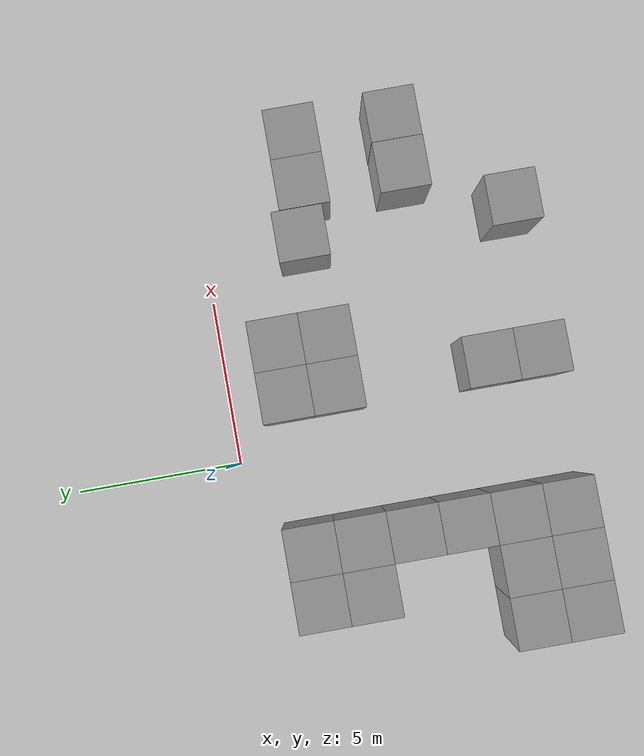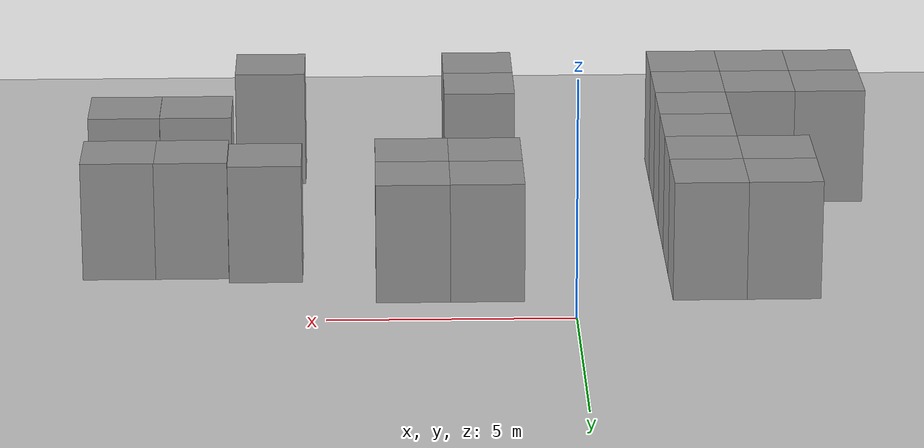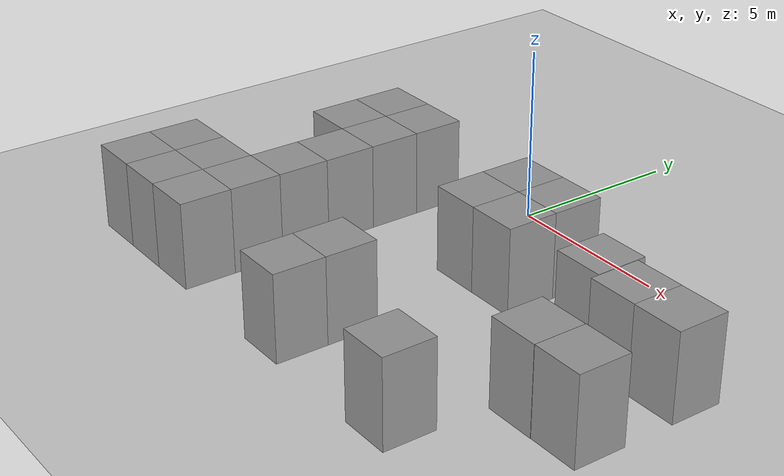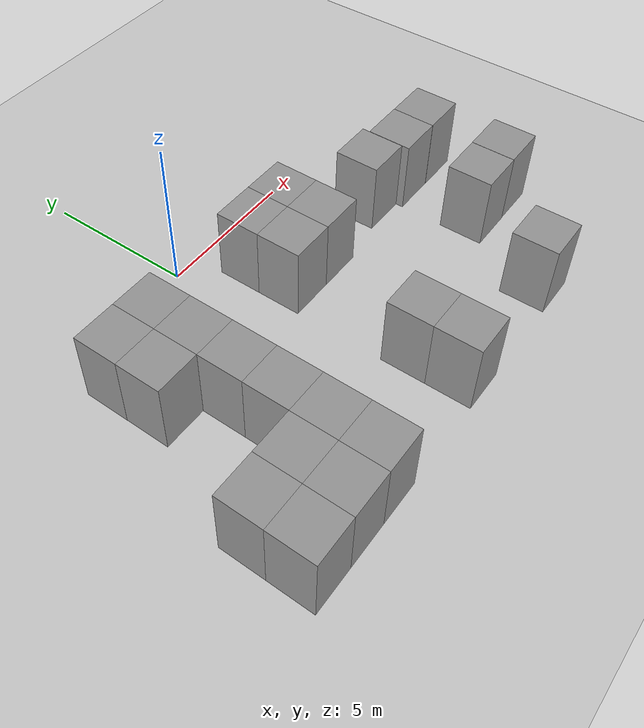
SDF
<sdf version="1.6">
 <world name="default">
  <model name="ground_plane">
   <static>1</static>
   <link name="link">
    <collision name="collision">
     <geometry><plane><normal>0 0 1</normal><size>100 100</size></plane></geometry>
     <surface><friction><ode><mu>100</mu><mu2>50</mu2></ode></friction></surface>
    </collision>
    <visual name="visual">
     <cast_shadows>0</cast_shadows>
     <geometry><plane><normal>0 0 1</normal><size>100 100</size></plane></geometry>
     <material>
      <script><uri>file://media/materials/scripts/gazebo.material</uri><name>Gazebo/Grey</name></script>
     </material>
    </visual>
   </link>
  </model>
  <model name="wall_1.5_1.5">
   <link name="Wall_2">
    <inertial>
     <mass>10</mass>
     <inertia><ixx>1</ixx><ixy>0</ixy><ixz>0</ixz><iyy>1</iyy><iyz>0</iyz><izz>1</izz></inertia>
    </inertial>
    <visual name="Wall_2_Visual">
     <pose>0 0 1.25 0 -0 0</pose>
     <geometry><box><size>1.5 1.5 2.5</size></box></geometry>
     <material>
      <script><uri>file://media/materials/scripts/gazebo.material</uri><name>Gazebo/Grey</name></script>
      <ambient>1 1 1 1</ambient>
      <diffuse>0.7 0.7 0.7 1</diffuse>
      <specular>0.01 0.01 0.01 1</specular>
      <emissive>0 0 0 1</emissive>
      <shader type="vertex"><normal_map>__default__</normal_map></shader>
     </material>
    </visual>
    <collision name="Wall_2_Collision">
     <pose>0 0 1.25 0 -0 0</pose>
     <geometry><box><size>1.5 1.5 2.5</size></box></geometry>
     <surface>
      <friction>
       <ode><mu>1</mu><mu2>1</mu2><fdir1>0 0 0</fdir1><slip1>0</slip1><slip2>0</slip2></ode>
       <torsional>
        <coefficient>1</coefficient>
        <patch_radius>0</patch_radius>
        <surface_radius>0</surface_radius>
        <use_patch_radius>1</use_patch_radius>
        <ode><slip>0</slip></ode>
       </torsional>
      </friction>
      <bounce><restitution_coefficient>0</restitution_coefficient><threshold>1e+06</threshold></bounce>
      <contact>
       <collide_without_contact>0</collide_without_contact>
       <collide_without_contact_bitmask>1</collide_without_contact_bitmask>
       <collide_bitmask>1</collide_bitmask>
       <ode>
        <soft_cfm>0</soft_cfm>
        <soft_erp>0.2</soft_erp>
        <kp>1e+13</kp>
        <kd>1</kd>
        <max_vel>0.01</max_vel>
        <min_depth>0</min_depth>
       </ode>
       <bullet>
        <split_impulse>1</split_impulse>
        <split_impulse_penetration_threshold>-0.01</split_impulse_penetration_threshold>
        <soft_cfm>0</soft_cfm>
        <soft_erp>0.2</soft_erp>
        <kp>1e+13</kp>
        <kd>1</kd>
       </bullet>
      </contact>
     </surface>
    </collision>
   </link>
   <static>1</static>
   <pose>6.25 -9.25 0 0 -0 0</pose>
  </model>
  <model name="wall_1.5_1.5_2">
   <link name="Wall_2">
    <inertial>
     <mass>10</mass>
     <inertia><ixx>1</ixx><ixy>0</ixy><ixz>0</ixz><iyy>1</iyy><iyz>0</iyz><izz>1</izz></inertia>
    </inertial>
    <visual name="Wall_2_Visual">
     <pose>0 0 1.25 0 -0 0</pose>
     <geometry><box><size>1.5 1.5 2.5</size></box></geometry>
     <material>
      <script><uri>file://media/materials/scripts/gazebo.material</uri><name>Gazebo/Grey</name></script>
      <ambient>1 1 1 1</ambient>
      <diffuse>0.7 0.7 0.7 1</diffuse>
      <specular>0.01 0.01 0.01 1</specular>
      <emissive>0 0 0 1</emissive>
      <shader type="vertex"><normal_map>__default__</normal_map></shader>
     </material>
    </visual>
    <collision name="Wall_2_Collision">
     <pose>0 0 1.25 0 -0 0</pose>
     <geometry><box><size>1.5 1.5 2.5</size></box></geometry>
     <surface>
      <friction>
       <ode><mu>1</mu><mu2>1</mu2><fdir1>0 0 0</fdir1><slip1>0</slip1><slip2>0</slip2></ode>
       <torsional>
        <coefficient>1</coefficient>
        <patch_radius>0</patch_radius>
        <surface_radius>0</surface_radius>
        <use_patch_radius>1</use_patch_radius>
        <ode><slip>0</slip></ode>
       </torsional>
      </friction>
      <bounce><restitution_coefficient>0</restitution_coefficient><threshold>1e+06</threshold></bounce>
      <contact>
       <collide_without_contact>0</collide_without_contact>
       <collide_without_contact_bitmask>1</collide_without_contact_bitmask>
       <collide_bitmask>1</collide_bitmask>
       <ode>
        <soft_cfm>0</soft_cfm>
        <soft_erp>0.2</soft_erp>
        <kp>1e+13</kp>
        <kd>1</kd>
        <max_vel>0.01</max_vel>
        <min_depth>0</min_depth>
       </ode>
       <bullet>
        <split_impulse>1</split_impulse>
        <split_impulse_penetration_threshold>-0.01</split_impulse_penetration_threshold>
        <soft_cfm>0</soft_cfm>
        <soft_erp>0.2</soft_erp>
        <kp>1e+13</kp>
        <kd>1</kd>
       </bullet>
      </contact>
     </surface>
    </collision>
   </link>
   <static>1</static>
   <pose>6.25 -3 0 0 -0 0</pose>
  </model>
  <model name="wall_1.5_1.5_3">
   <link name="Wall_2">
    <inertial>
     <mass>10</mass>
     <inertia><ixx>1</ixx><ixy>0</ixy><ixz>0</ixz><iyy>1</iyy><iyz>0</iyz><izz>1</izz></inertia>
    </inertial>
    <visual name="Wall_2_Visual">
     <pose>0 0 1.25 0 -0 0</pose>
     <geometry><box><size>1.5 1.5 2.5</size></box></geometry>
     <material>
      <script><uri>file://media/materials/scripts/gazebo.material</uri><name>Gazebo/Grey</name></script>
      <ambient>1 1 1 1</ambient>
      <diffuse>0.7 0.7 0.7 1</diffuse>
      <specular>0.01 0.01 0.01 1</specular>
      <emissive>0 0 0 1</emissive>
      <shader type="vertex"><normal_map>__default__</normal_map></shader>
     </material>
    </visual>
    <collision name="Wall_2_Collision">
     <pose>0 0 1.25 0 -0 0</pose>
     <geometry><box><size>1.5 1.5 2.5</size></box></geometry>
     <surface>
      <friction>
       <ode><mu>1</mu><mu2>1</mu2><fdir1>0 0 0</fdir1><slip1>0</slip1><slip2>0</slip2></ode>
       <torsional>
        <coefficient>1</coefficient>
        <patch_radius>0</patch_radius>
        <surface_radius>0</surface_radius>
        <use_patch_radius>1</use_patch_radius>
        <ode><slip>0</slip></ode>
       </torsional>
      </friction>
      <bounce><restitution_coefficient>0</restitution_coefficient><threshold>1e+06</threshold></bounce>
      <contact>
       <collide_without_contact>0</collide_without_contact>
       <collide_without_contact_bitmask>1</collide_without_contact_bitmask>
       <collide_bitmask>1</collide_bitmask>
       <ode>
        <soft_cfm>0</soft_cfm>
        <soft_erp>0.2</soft_erp>
        <kp>1e+13</kp>
        <kd>1</kd>
        <max_vel>0.01</max_vel>
        <min_depth>0</min_depth>
       </ode>
       <bullet>
        <split_impulse>1</split_impulse>
        <split_impulse_penetration_threshold>-0.01</split_impulse_penetration_threshold>
        <soft_cfm>0</soft_cfm>
        <soft_erp>0.2</soft_erp>
        <kp>1e+13</kp>
        <kd>1</kd>
       </bullet>
      </contact>
     </surface>
    </collision>
   </link>
   <static>1</static>
   <pose>7.75334 -6.23301 0 0 -0 0</pose>
  </model>
  <model name="wall_1.5_1.5_8">
   <link name="Wall_2">
    <inertial>
     <mass>10</mass>
     <inertia><ixx>1</ixx><ixy>0</ixy><ixz>0</ixz><iyy>1</iyy><iyz>0</iyz><izz>1</izz></inertia>
    </inertial>
    <visual name="Wall_2_Visual">
     <pose>0 0 1.25 0 -0 0</pose>
     <geometry><box><size>1.5 1.5 2.5</size></box></geometry>
     <material>
      <script><uri>file://media/materials/scripts/gazebo.material</uri><name>Gazebo/Grey</name></script>
      <ambient>1 1 1 1</ambient>
      <diffuse>0.7 0.7 0.7 1</diffuse>
      <specular>0.01 0.01 0.01 1</specular>
      <emissive>0 0 0 1</emissive>
      <shader type="vertex"><normal_map>__default__</normal_map></shader>
     </material>
    </visual>
    <collision name="Wall_2_Collision">
     <pose>0 0 1.25 0 -0 0</pose>
     <geometry><box><size>1.5 1.5 2.5</size></box></geometry>
     <surface>
      <friction>
       <ode><mu>1</mu><mu2>1</mu2><fdir1>0 0 0</fdir1><slip1>0</slip1><slip2>0</slip2></ode>
       <torsional>
        <coefficient>1</coefficient>
        <patch_radius>0</patch_radius>
        <surface_radius>0</surface_radius>
        <use_patch_radius>1</use_patch_radius>
        <ode><slip>0</slip></ode>
       </torsional>
      </friction>
      <bounce><restitution_coefficient>0</restitution_coefficient><threshold>1e+06</threshold></bounce>
      <contact>
       <collide_without_contact>0</collide_without_contact>
       <collide_without_contact_bitmask>1</collide_without_contact_bitmask>
       <collide_bitmask>1</collide_bitmask>
       <ode>
        <soft_cfm>0</soft_cfm>
        <soft_erp>0.2</soft_erp>
        <kp>1e+13</kp>
        <kd>1</kd>
        <max_vel>0.01</max_vel>
        <min_depth>0</min_depth>
       </ode>
       <bullet>
        <split_impulse>1</split_impulse>
        <split_impulse_penetration_threshold>-0.01</split_impulse_penetration_threshold>
        <soft_cfm>0</soft_cfm>
        <soft_erp>0.2</soft_erp>
        <kp>1e+13</kp>
        <kd>1</kd>
       </bullet>
      </contact>
     </surface>
    </collision>
   </link>
   <static>1</static>
   <pose>9.25677 -6.22393 0 0 -0 0</pose>
  </model>
  <model name="wall_1.5_1.5_9">
   <link name="Wall_2">
    <inertial>
     <mass>10</mass>
     <inertia><ixx>1</ixx><ixy>0</ixy><ixz>0</ixz><iyy>1</iyy><iyz>0</iyz><izz>1</izz></inertia>
    </inertial>
    <visual name="Wall_2_Visual">
     <pose>0 0 1.25 0 -0 0</pose>
     <geometry><box><size>1.5 1.5 2.5</size></box></geometry>
     <material>
      <script><uri>file://media/materials/scripts/gazebo.material</uri><name>Gazebo/Grey</name></script>
      <ambient>1 1 1 1</ambient>
      <diffuse>0.7 0.7 0.7 1</diffuse>
      <specular>0.01 0.01 0.01 1</specular>
      <emissive>0 0 0 1</emissive>
      <shader type="vertex"><normal_map>__default__</normal_map></shader>
     </material>
    </visual>
    <collision name="Wall_2_Collision">
     <pose>0 0 1.25 0 -0 0</pose>
     <geometry><box><size>1.5 1.5 2.5</size></box></geometry>
     <surface>
      <friction>
       <ode><mu>1</mu><mu2>1</mu2><fdir1>0 0 0</fdir1><slip1>0</slip1><slip2>0</slip2></ode>
       <torsional>
        <coefficient>1</coefficient>
        <patch_radius>0</patch_radius>
        <surface_radius>0</surface_radius>
        <use_patch_radius>1</use_patch_radius>
        <ode><slip>0</slip></ode>
       </torsional>
      </friction>
      <bounce><restitution_coefficient>0</restitution_coefficient><threshold>1e+06</threshold></bounce>
      <contact>
       <collide_without_contact>0</collide_without_contact>
       <collide_without_contact_bitmask>1</collide_without_contact_bitmask>
       <collide_bitmask>1</collide_bitmask>
       <ode>
        <soft_cfm>0</soft_cfm>
        <soft_erp>0.2</soft_erp>
        <kp>1e+13</kp>
        <kd>1</kd>
        <max_vel>0.01</max_vel>
        <min_depth>0</min_depth>
       </ode>
       <bullet>
        <split_impulse>1</split_impulse>
        <split_impulse_penetration_threshold>-0.01</split_impulse_penetration_threshold>
        <soft_cfm>0</soft_cfm>
        <soft_erp>0.2</soft_erp>
        <kp>1e+13</kp>
        <kd>1</kd>
       </bullet>
      </contact>
     </surface>
    </collision>
   </link>
   <static>1</static>
   <pose>9.24884 -3.25545 0 0 -0 0</pose>
  </model>
  <model name="wall_1.5_1.5_10">
   <link name="Wall_2">
    <inertial>
     <mass>10</mass>
     <inertia><ixx>1</ixx><ixy>0</ixy><ixz>0</ixz><iyy>1</iyy><iyz>0</iyz><izz>1</izz></inertia>
    </inertial>
    <visual name="Wall_2_Visual">
     <pose>0 0 1.25 0 -0 0</pose>
     <geometry><box><size>1.5 1.5 2.5</size></box></geometry>
     <material>
      <script><uri>file://media/materials/scripts/gazebo.material</uri><name>Gazebo/Grey</name></script>
      <ambient>1 1 1 1</ambient>
      <diffuse>0.7 0.7 0.7 1</diffuse>
      <specular>0.01 0.01 0.01 1</specular>
      <emissive>0 0 0 1</emissive>
      <shader type="vertex"><normal_map>__default__</normal_map></shader>
     </material>
    </visual>
    <collision name="Wall_2_Collision">
     <pose>0 0 1.25 0 -0 0</pose>
     <geometry><box><size>1.5 1.5 2.5</size></box></geometry>
     <surface>
      <friction>
       <ode><mu>1</mu><mu2>1</mu2><fdir1>0 0 0</fdir1><slip1>0</slip1><slip2>0</slip2></ode>
       <torsional>
        <coefficient>1</coefficient>
        <patch_radius>0</patch_radius>
        <surface_radius>0</surface_radius>
        <use_patch_radius>1</use_patch_radius>
        <ode><slip>0</slip></ode>
       </torsional>
      </friction>
      <bounce><restitution_coefficient>0</restitution_coefficient><threshold>1e+06</threshold></bounce>
      <contact>
       <collide_without_contact>0</collide_without_contact>
       <collide_without_contact_bitmask>1</collide_without_contact_bitmask>
       <collide_bitmask>1</collide_bitmask>
       <ode>
        <soft_cfm>0</soft_cfm>
        <soft_erp>0.2</soft_erp>
        <kp>1e+13</kp>
        <kd>1</kd>
        <max_vel>0.01</max_vel>
        <min_depth>0</min_depth>
       </ode>
       <bullet>
        <split_impulse>1</split_impulse>
        <split_impulse_penetration_threshold>-0.01</split_impulse_penetration_threshold>
        <soft_cfm>0</soft_cfm>
        <soft_erp>0.2</soft_erp>
        <kp>1e+13</kp>
        <kd>1</kd>
       </bullet>
      </contact>
     </surface>
    </collision>
   </link>
   <static>1</static>
   <pose>7.76163 -3.25137 0 0 -0 0</pose>
  </model>
  <model name="wall_1.5_1.5_21">
   <link name="Wall_2">
    <inertial>
     <mass>10</mass>
     <inertia><ixx>1</ixx><ixy>0</ixy><ixz>0</ixz><iyy>1</iyy><iyz>0</iyz><izz>1</izz></inertia>
    </inertial>
    <visual name="Wall_2_Visual">
     <pose>0 0 1.25 0 -0 0</pose>
     <geometry><box><size>1.5 1.5 2.5</size></box></geometry>
     <material>
      <script><uri>file://media/materials/scripts/gazebo.material</uri><name>Gazebo/Grey</name></script>
      <ambient>1 1 1 1</ambient>
      <diffuse>0.7 0.7 0.7 1</diffuse>
      <specular>0.01 0.01 0.01 1</specular>
      <emissive>0 0 0 1</emissive>
      <shader type="vertex"><normal_map>__default__</normal_map></shader>
     </material>
    </visual>
    <collision name="Wall_2_Collision">
     <pose>0 0 1.25 0 -0 0</pose>
     <geometry><box><size>1.5 1.5 2.5</size></box></geometry>
     <surface>
      <friction>
       <ode><mu>1</mu><mu2>1</mu2><fdir1>0 0 0</fdir1><slip1>0</slip1><slip2>0</slip2></ode>
       <torsional>
        <coefficient>1</coefficient>
        <patch_radius>0</patch_radius>
        <surface_radius>0</surface_radius>
        <use_patch_radius>1</use_patch_radius>
        <ode><slip>0</slip></ode>
       </torsional>
      </friction>
      <bounce><restitution_coefficient>0</restitution_coefficient><threshold>1e+06</threshold></bounce>
      <contact>
       <collide_without_contact>0</collide_without_contact>
       <collide_without_contact_bitmask>1</collide_without_contact_bitmask>
       <collide_bitmask>1</collide_bitmask>
       <ode>
        <soft_cfm>0</soft_cfm>
        <soft_erp>0.2</soft_erp>
        <kp>1e+13</kp>
        <kd>1</kd>
        <max_vel>0.01</max_vel>
        <min_depth>0</min_depth>
       </ode>
       <bullet>
        <split_impulse>1</split_impulse>
        <split_impulse_penetration_threshold>-0.01</split_impulse_penetration_threshold>
        <soft_cfm>0</soft_cfm>
        <soft_erp>0.2</soft_erp>
        <kp>1e+13</kp>
        <kd>1</kd>
       </bullet>
      </contact>
     </surface>
    </collision>
   </link>
   <static>1</static>
   <pose>1.75 -9.25 0 0 -0 0</pose>
  </model>
  <model name="wall_1.5_1.5_22">
   <link name="Wall_2">
    <inertial>
     <mass>10</mass>
     <inertia><ixx>1</ixx><ixy>0</ixy><ixz>0</ixz><iyy>1</iyy><iyz>0</iyz><izz>1</izz></inertia>
    </inertial>
    <visual name="Wall_2_Visual">
     <pose>0 0 1.25 0 -0 0</pose>
     <geometry><box><size>1.5 1.5 2.5</size></box></geometry>
     <material>
      <script><uri>file://media/materials/scripts/gazebo.material</uri><name>Gazebo/Grey</name></script>
      <ambient>1 1 1 1</ambient>
      <diffuse>0.7 0.7 0.7 1</diffuse>
      <specular>0.01 0.01 0.01 1</specular>
      <emissive>0 0 0 1</emissive>
      <shader type="vertex"><normal_map>__default__</normal_map></shader>
     </material>
    </visual>
    <collision name="Wall_2_Collision">
     <pose>0 0 1.25 0 -0 0</pose>
     <geometry><box><size>1.5 1.5 2.5</size></box></geometry>
     <surface>
      <friction>
       <ode><mu>1</mu><mu2>1</mu2><fdir1>0 0 0</fdir1><slip1>0</slip1><slip2>0</slip2></ode>
       <torsional>
        <coefficient>1</coefficient>
        <patch_radius>0</patch_radius>
        <surface_radius>0</surface_radius>
        <use_patch_radius>1</use_patch_radius>
        <ode><slip>0</slip></ode>
       </torsional>
      </friction>
      <bounce><restitution_coefficient>0</restitution_coefficient><threshold>1e+06</threshold></bounce>
      <contact>
       <collide_without_contact>0</collide_without_contact>
       <collide_without_contact_bitmask>1</collide_without_contact_bitmask>
       <collide_bitmask>1</collide_bitmask>
       <ode>
        <soft_cfm>0</soft_cfm>
        <soft_erp>0.2</soft_erp>
        <kp>1e+13</kp>
        <kd>1</kd>
        <max_vel>0.01</max_vel>
        <min_depth>0</min_depth>
       </ode>
       <bullet>
        <split_impulse>1</split_impulse>
        <split_impulse_penetration_threshold>-0.01</split_impulse_penetration_threshold>
        <soft_cfm>0</soft_cfm>
        <soft_erp>0.2</soft_erp>
        <kp>1e+13</kp>
        <kd>1</kd>
       </bullet>
      </contact>
     </surface>
    </collision>
   </link>
   <static>1</static>
   <pose>3.25 -3.25 0 0 -0 0</pose>
  </model>
  <model name="wall_1.5_1.5_25">
   <link name="Wall_2">
    <inertial>
     <mass>10</mass>
     <inertia><ixx>1</ixx><ixy>0</ixy><ixz>0</ixz><iyy>1</iyy><iyz>0</iyz><izz>1</izz></inertia>
    </inertial>
    <visual name="Wall_2_Visual">
     <pose>0 0 1.25 0 -0 0</pose>
     <geometry><box><size>1.5 1.5 2.5</size></box></geometry>
     <material>
      <script><uri>file://media/materials/scripts/gazebo.material</uri><name>Gazebo/Grey</name></script>
      <ambient>1 1 1 1</ambient>
      <diffuse>0.7 0.7 0.7 1</diffuse>
      <specular>0.01 0.01 0.01 1</specular>
      <emissive>0 0 0 1</emissive>
      <shader type="vertex"><normal_map>__default__</normal_map></shader>
     </material>
    </visual>
    <collision name="Wall_2_Collision">
     <pose>0 0 1.25 0 -0 0</pose>
     <geometry><box><size>1.5 1.5 2.5</size></box></geometry>
     <surface>
      <friction>
       <ode><mu>1</mu><mu2>1</mu2><fdir1>0 0 0</fdir1><slip1>0</slip1><slip2>0</slip2></ode>
       <torsional>
        <coefficient>1</coefficient>
        <patch_radius>0</patch_radius>
        <surface_radius>0</surface_radius>
        <use_patch_radius>1</use_patch_radius>
        <ode><slip>0</slip></ode>
       </torsional>
      </friction>
      <bounce><restitution_coefficient>0</restitution_coefficient><threshold>1e+06</threshold></bounce>
      <contact>
       <collide_without_contact>0</collide_without_contact>
       <collide_without_contact_bitmask>1</collide_without_contact_bitmask>
       <collide_bitmask>1</collide_bitmask>
       <ode>
        <soft_cfm>0</soft_cfm>
        <soft_erp>0.2</soft_erp>
        <kp>1e+13</kp>
        <kd>1</kd>
        <max_vel>0.01</max_vel>
        <min_depth>0</min_depth>
       </ode>
       <bullet>
        <split_impulse>1</split_impulse>
        <split_impulse_penetration_threshold>-0.01</split_impulse_penetration_threshold>
        <soft_cfm>0</soft_cfm>
        <soft_erp>0.2</soft_erp>
        <kp>1e+13</kp>
        <kd>1</kd>
       </bullet>
      </contact>
     </surface>
    </collision>
   </link>
   <static>1</static>
   <pose>1.75 -7.75 0 0 -0 0</pose>
  </model>
  <model name="wall_1.5_1.5_26">
   <link name="Wall_2">
    <inertial>
     <mass>10</mass>
     <inertia><ixx>1</ixx><ixy>0</ixy><ixz>0</ixz><iyy>1</iyy><iyz>0</iyz><izz>1</izz></inertia>
    </inertial>
    <visual name="Wall_2_Visual">
     <pose>0 0 1.25 0 -0 0</pose>
     <geometry><box><size>1.5 1.5 2.5</size></box></geometry>
     <material>
      <script><uri>file://media/materials/scripts/gazebo.material</uri><name>Gazebo/Grey</name></script>
      <ambient>1 1 1 1</ambient>
      <diffuse>0.7 0.7 0.7 1</diffuse>
      <specular>0.01 0.01 0.01 1</specular>
      <emissive>0 0 0 1</emissive>
      <shader type="vertex"><normal_map>__default__</normal_map></shader>
     </material>
    </visual>
    <collision name="Wall_2_Collision">
     <pose>0 0 1.25 0 -0 0</pose>
     <geometry><box><size>1.5 1.5 2.5</size></box></geometry>
     <surface>
      <friction>
       <ode><mu>1</mu><mu2>1</mu2><fdir1>0 0 0</fdir1><slip1>0</slip1><slip2>0</slip2></ode>
       <torsional>
        <coefficient>1</coefficient>
        <patch_radius>0</patch_radius>
        <surface_radius>0</surface_radius>
        <use_patch_radius>1</use_patch_radius>
        <ode><slip>0</slip></ode>
       </torsional>
      </friction>
      <bounce><restitution_coefficient>0</restitution_coefficient><threshold>1e+06</threshold></bounce>
      <contact>
       <collide_without_contact>0</collide_without_contact>
       <collide_without_contact_bitmask>1</collide_without_contact_bitmask>
       <collide_bitmask>1</collide_bitmask>
       <ode>
        <soft_cfm>0</soft_cfm>
        <soft_erp>0.2</soft_erp>
        <kp>1e+13</kp>
        <kd>1</kd>
        <max_vel>0.01</max_vel>
        <min_depth>0</min_depth>
       </ode>
       <bullet>
        <split_impulse>1</split_impulse>
        <split_impulse_penetration_threshold>-0.01</split_impulse_penetration_threshold>
        <soft_cfm>0</soft_cfm>
        <soft_erp>0.2</soft_erp>
        <kp>1e+13</kp>
        <kd>1</kd>
       </bullet>
      </contact>
     </surface>
    </collision>
   </link>
   <static>1</static>
   <pose>3.25 -1.75 0 0 -0 0</pose>
  </model>
  <model name="wall_1.5_1.5_27">
   <link name="Wall_2">
    <inertial>
     <mass>10</mass>
     <inertia><ixx>1</ixx><ixy>0</ixy><ixz>0</ixz><iyy>1</iyy><iyz>0</iyz><izz>1</izz></inertia>
    </inertial>
    <visual name="Wall_2_Visual">
     <pose>0 0 1.25 0 -0 0</pose>
     <geometry><box><size>1.5 1.5 2.5</size></box></geometry>
     <material>
      <script><uri>file://media/materials/scripts/gazebo.material</uri><name>Gazebo/Grey</name></script>
      <ambient>1 1 1 1</ambient>
      <diffuse>0.7 0.7 0.7 1</diffuse>
      <specular>0.01 0.01 0.01 1</specular>
      <emissive>0 0 0 1</emissive>
      <shader type="vertex"><normal_map>__default__</normal_map></shader>
     </material>
    </visual>
    <collision name="Wall_2_Collision">
     <pose>0 0 1.25 0 -0 0</pose>
     <geometry><box><size>1.5 1.5 2.5</size></box></geometry>
     <surface>
      <friction>
       <ode><mu>1</mu><mu2>1</mu2><fdir1>0 0 0</fdir1><slip1>0</slip1><slip2>0</slip2></ode>
       <torsional>
        <coefficient>1</coefficient>
        <patch_radius>0</patch_radius>
        <surface_radius>0</surface_radius>
        <use_patch_radius>1</use_patch_radius>
        <ode><slip>0</slip></ode>
       </torsional>
      </friction>
      <bounce><restitution_coefficient>0</restitution_coefficient><threshold>1e+06</threshold></bounce>
      <contact>
       <collide_without_contact>0</collide_without_contact>
       <collide_without_contact_bitmask>1</collide_without_contact_bitmask>
       <collide_bitmask>1</collide_bitmask>
       <ode>
        <soft_cfm>0</soft_cfm>
        <soft_erp>0.2</soft_erp>
        <kp>1e+13</kp>
        <kd>1</kd>
        <max_vel>0.01</max_vel>
        <min_depth>0</min_depth>
       </ode>
       <bullet>
        <split_impulse>1</split_impulse>
        <split_impulse_penetration_threshold>-0.01</split_impulse_penetration_threshold>
        <soft_cfm>0</soft_cfm>
        <soft_erp>0.2</soft_erp>
        <kp>1e+13</kp>
        <kd>1</kd>
       </bullet>
      </contact>
     </surface>
    </collision>
   </link>
   <static>1</static>
   <pose>1.75 -3.25 0 0 -0 0</pose>
  </model>
  <model name="wall_1.5_1.5_28">
   <link name="Wall_2">
    <inertial>
     <mass>10</mass>
     <inertia><ixx>1</ixx><ixy>0</ixy><ixz>0</ixz><iyy>1</iyy><iyz>0</iyz><izz>1</izz></inertia>
    </inertial>
    <visual name="Wall_2_Visual">
     <pose>0 0 1.25 0 -0 0</pose>
     <geometry><box><size>1.5 1.5 2.5</size></box></geometry>
     <material>
      <script><uri>file://media/materials/scripts/gazebo.material</uri><name>Gazebo/Grey</name></script>
      <ambient>1 1 1 1</ambient>
      <diffuse>0.7 0.7 0.7 1</diffuse>
      <specular>0.01 0.01 0.01 1</specular>
      <emissive>0 0 0 1</emissive>
      <shader type="vertex"><normal_map>__default__</normal_map></shader>
     </material>
    </visual>
    <collision name="Wall_2_Collision">
     <pose>0 0 1.25 0 -0 0</pose>
     <geometry><box><size>1.5 1.5 2.5</size></box></geometry>
     <surface>
      <friction>
       <ode><mu>1</mu><mu2>1</mu2><fdir1>0 0 0</fdir1><slip1>0</slip1><slip2>0</slip2></ode>
       <torsional>
        <coefficient>1</coefficient>
        <patch_radius>0</patch_radius>
        <surface_radius>0</surface_radius>
        <use_patch_radius>1</use_patch_radius>
        <ode><slip>0</slip></ode>
       </torsional>
      </friction>
      <bounce><restitution_coefficient>0</restitution_coefficient><threshold>1e+06</threshold></bounce>
      <contact>
       <collide_without_contact>0</collide_without_contact>
       <collide_without_contact_bitmask>1</collide_without_contact_bitmask>
       <collide_bitmask>1</collide_bitmask>
       <ode>
        <soft_cfm>0</soft_cfm>
        <soft_erp>0.2</soft_erp>
        <kp>1e+13</kp>
        <kd>1</kd>
        <max_vel>0.01</max_vel>
        <min_depth>0</min_depth>
       </ode>
       <bullet>
        <split_impulse>1</split_impulse>
        <split_impulse_penetration_threshold>-0.01</split_impulse_penetration_threshold>
        <soft_cfm>0</soft_cfm>
        <soft_erp>0.2</soft_erp>
        <kp>1e+13</kp>
        <kd>1</kd>
       </bullet>
      </contact>
     </surface>
    </collision>
   </link>
   <static>1</static>
   <pose>1.75 -1.75 0 0 -0 0</pose>
  </model>
  <model name="wall_1.5_1.5_41">
   <link name="Wall_2">
    <inertial>
     <mass>10</mass>
     <inertia><ixx>1</ixx><ixy>0</ixy><ixz>0</ixz><iyy>1</iyy><iyz>0</iyz><izz>1</izz></inertia>
    </inertial>
    <visual name="Wall_2_Visual">
     <pose>0 0 1.25 0 -0 0</pose>
     <geometry><box><size>1.5 1.5 2.5</size></box></geometry>
     <material>
      <script><uri>file://media/materials/scripts/gazebo.material</uri><name>Gazebo/Grey</name></script>
      <ambient>1 1 1 1</ambient>
      <diffuse>0.7 0.7 0.7 1</diffuse>
      <specular>0.01 0.01 0.01 1</specular>
      <emissive>0 0 0 1</emissive>
      <shader type="vertex"><normal_map>__default__</normal_map></shader>
     </material>
    </visual>
    <collision name="Wall_2_Collision">
     <pose>0 0 1.25 0 -0 0</pose>
     <geometry><box><size>1.5 1.5 2.5</size></box></geometry>
     <surface>
      <friction>
       <ode><mu>1</mu><mu2>1</mu2><fdir1>0 0 0</fdir1><slip1>0</slip1><slip2>0</slip2></ode>
       <torsional>
        <coefficient>1</coefficient>
        <patch_radius>0</patch_radius>
        <surface_radius>0</surface_radius>
        <use_patch_radius>1</use_patch_radius>
        <ode><slip>0</slip></ode>
       </torsional>
      </friction>
      <bounce><restitution_coefficient>0</restitution_coefficient><threshold>1e+06</threshold></bounce>
      <contact>
       <collide_without_contact>0</collide_without_contact>
       <collide_without_contact_bitmask>1</collide_without_contact_bitmask>
       <collide_bitmask>1</collide_bitmask>
       <ode>
        <soft_cfm>0</soft_cfm>
        <soft_erp>0.2</soft_erp>
        <kp>1e+13</kp>
        <kd>1</kd>
        <max_vel>0.01</max_vel>
        <min_depth>0</min_depth>
       </ode>
       <bullet>
        <split_impulse>1</split_impulse>
        <split_impulse_penetration_threshold>-0.01</split_impulse_penetration_threshold>
        <soft_cfm>0</soft_cfm>
        <soft_erp>0.2</soft_erp>
        <kp>1e+13</kp>
        <kd>1</kd>
       </bullet>
      </contact>
     </surface>
    </collision>
   </link>
   <static>1</static>
   <pose>-2.75 -9.25 0 0 -0 0</pose>
  </model>
  <model name="wall_1.5_1.5_42">
   <link name="Wall_2">
    <inertial>
     <mass>10</mass>
     <inertia><ixx>1</ixx><ixy>0</ixy><ixz>0</ixz><iyy>1</iyy><iyz>0</iyz><izz>1</izz></inertia>
    </inertial>
    <visual name="Wall_2_Visual">
     <pose>0 0 1.25 0 -0 0</pose>
     <geometry><box><size>1.5 1.5 2.5</size></box></geometry>
     <material>
      <script><uri>file://media/materials/scripts/gazebo.material</uri><name>Gazebo/Grey</name></script>
      <ambient>1 1 1 1</ambient>
      <diffuse>0.7 0.7 0.7 1</diffuse>
      <specular>0.01 0.01 0.01 1</specular>
      <emissive>0 0 0 1</emissive>
      <shader type="vertex"><normal_map>__default__</normal_map></shader>
     </material>
    </visual>
    <collision name="Wall_2_Collision">
     <pose>0 0 1.25 0 -0 0</pose>
     <geometry><box><size>1.5 1.5 2.5</size></box></geometry>
     <surface>
      <friction>
       <ode><mu>1</mu><mu2>1</mu2><fdir1>0 0 0</fdir1><slip1>0</slip1><slip2>0</slip2></ode>
       <torsional>
        <coefficient>1</coefficient>
        <patch_radius>0</patch_radius>
        <surface_radius>0</surface_radius>
        <use_patch_radius>1</use_patch_radius>
        <ode><slip>0</slip></ode>
       </torsional>
      </friction>
      <bounce><restitution_coefficient>0</restitution_coefficient><threshold>1e+06</threshold></bounce>
      <contact>
       <collide_without_contact>0</collide_without_contact>
       <collide_without_contact_bitmask>1</collide_without_contact_bitmask>
       <collide_bitmask>1</collide_bitmask>
       <ode>
        <soft_cfm>0</soft_cfm>
        <soft_erp>0.2</soft_erp>
        <kp>1e+13</kp>
        <kd>1</kd>
        <max_vel>0.01</max_vel>
        <min_depth>0</min_depth>
       </ode>
       <bullet>
        <split_impulse>1</split_impulse>
        <split_impulse_penetration_threshold>-0.01</split_impulse_penetration_threshold>
        <soft_cfm>0</soft_cfm>
        <soft_erp>0.2</soft_erp>
        <kp>1e+13</kp>
        <kd>1</kd>
       </bullet>
      </contact>
     </surface>
    </collision>
   </link>
   <static>1</static>
   <pose>-4.25 -9.25 0 0 -0 0</pose>
  </model>
  <model name="wall_1.5_1.5_43">
   <link name="Wall_2">
    <inertial>
     <mass>10</mass>
     <inertia><ixx>1</ixx><ixy>0</ixy><ixz>0</ixz><iyy>1</iyy><iyz>0</iyz><izz>1</izz></inertia>
    </inertial>
    <visual name="Wall_2_Visual">
     <pose>0 0 1.25 0 -0 0</pose>
     <geometry><box><size>1.5 1.5 2.5</size></box></geometry>
     <material>
      <script><uri>file://media/materials/scripts/gazebo.material</uri><name>Gazebo/Grey</name></script>
      <ambient>1 1 1 1</ambient>
      <diffuse>0.7 0.7 0.7 1</diffuse>
      <specular>0.01 0.01 0.01 1</specular>
      <emissive>0 0 0 1</emissive>
      <shader type="vertex"><normal_map>__default__</normal_map></shader>
     </material>
    </visual>
    <collision name="Wall_2_Collision">
     <pose>0 0 1.25 0 -0 0</pose>
     <geometry><box><size>1.5 1.5 2.5</size></box></geometry>
     <surface>
      <friction>
       <ode><mu>1</mu><mu2>1</mu2><fdir1>0 0 0</fdir1><slip1>0</slip1><slip2>0</slip2></ode>
       <torsional>
        <coefficient>1</coefficient>
        <patch_radius>0</patch_radius>
        <surface_radius>0</surface_radius>
        <use_patch_radius>1</use_patch_radius>
        <ode><slip>0</slip></ode>
       </torsional>
      </friction>
      <bounce><restitution_coefficient>0</restitution_coefficient><threshold>1e+06</threshold></bounce>
      <contact>
       <collide_without_contact>0</collide_without_contact>
       <collide_without_contact_bitmask>1</collide_without_contact_bitmask>
       <collide_bitmask>1</collide_bitmask>
       <ode>
        <soft_cfm>0</soft_cfm>
        <soft_erp>0.2</soft_erp>
        <kp>1e+13</kp>
        <kd>1</kd>
        <max_vel>0.01</max_vel>
        <min_depth>0</min_depth>
       </ode>
       <bullet>
        <split_impulse>1</split_impulse>
        <split_impulse_penetration_threshold>-0.01</split_impulse_penetration_threshold>
        <soft_cfm>0</soft_cfm>
        <soft_erp>0.2</soft_erp>
        <kp>1e+13</kp>
        <kd>1</kd>
       </bullet>
      </contact>
     </surface>
    </collision>
   </link>
   <static>1</static>
   <pose>-5.75 -9.25 0 0 -0 0</pose>
  </model>
  <model name="wall_1.5_1.5_48">
   <link name="Wall_2">
    <inertial>
     <mass>10</mass>
     <inertia><ixx>1</ixx><ixy>0</ixy><ixz>0</ixz><iyy>1</iyy><iyz>0</iyz><izz>1</izz></inertia>
    </inertial>
    <visual name="Wall_2_Visual">
     <pose>0 0 1.25 0 -0 0</pose>
     <geometry><box><size>1.5 1.5 2.5</size></box></geometry>
     <material>
      <script><uri>file://media/materials/scripts/gazebo.material</uri><name>Gazebo/Grey</name></script>
      <ambient>1 1 1 1</ambient>
      <diffuse>0.7 0.7 0.7 1</diffuse>
      <specular>0.01 0.01 0.01 1</specular>
      <emissive>0 0 0 1</emissive>
      <shader type="vertex"><normal_map>__default__</normal_map></shader>
     </material>
    </visual>
    <collision name="Wall_2_Collision">
     <pose>0 0 1.25 0 -0 0</pose>
     <geometry><box><size>1.5 1.5 2.5</size></box></geometry>
     <surface>
      <friction>
       <ode><mu>1</mu><mu2>1</mu2><fdir1>0 0 0</fdir1><slip1>0</slip1><slip2>0</slip2></ode>
       <torsional>
        <coefficient>1</coefficient>
        <patch_radius>0</patch_radius>
        <surface_radius>0</surface_radius>
        <use_patch_radius>1</use_patch_radius>
        <ode><slip>0</slip></ode>
       </torsional>
      </friction>
      <bounce><restitution_coefficient>0</restitution_coefficient><threshold>1e+06</threshold></bounce>
      <contact>
       <collide_without_contact>0</collide_without_contact>
       <collide_without_contact_bitmask>1</collide_without_contact_bitmask>
       <collide_bitmask>1</collide_bitmask>
       <ode>
        <soft_cfm>0</soft_cfm>
        <soft_erp>0.2</soft_erp>
        <kp>1e+13</kp>
        <kd>1</kd>
        <max_vel>0.01</max_vel>
        <min_depth>0</min_depth>
       </ode>
       <bullet>
        <split_impulse>1</split_impulse>
        <split_impulse_penetration_threshold>-0.01</split_impulse_penetration_threshold>
        <soft_cfm>0</soft_cfm>
        <soft_erp>0.2</soft_erp>
        <kp>1e+13</kp>
        <kd>1</kd>
       </bullet>
      </contact>
     </surface>
    </collision>
   </link>
   <static>1</static>
   <pose>-2.75 -7.75 0 0 -0 0</pose>
  </model>
  <model name="wall_1.5_1.5_49">
   <link name="Wall_2">
    <inertial>
     <mass>10</mass>
     <inertia><ixx>1</ixx><ixy>0</ixy><ixz>0</ixz><iyy>1</iyy><iyz>0</iyz><izz>1</izz></inertia>
    </inertial>
    <visual name="Wall_2_Visual">
     <pose>0 0 1.25 0 -0 0</pose>
     <geometry><box><size>1.5 1.5 2.5</size></box></geometry>
     <material>
      <script><uri>file://media/materials/scripts/gazebo.material</uri><name>Gazebo/Grey</name></script>
      <ambient>1 1 1 1</ambient>
      <diffuse>0.7 0.7 0.7 1</diffuse>
      <specular>0.01 0.01 0.01 1</specular>
      <emissive>0 0 0 1</emissive>
      <shader type="vertex"><normal_map>__default__</normal_map></shader>
     </material>
    </visual>
    <collision name="Wall_2_Collision">
     <pose>0 0 1.25 0 -0 0</pose>
     <geometry><box><size>1.5 1.5 2.5</size></box></geometry>
     <surface>
      <friction>
       <ode><mu>1</mu><mu2>1</mu2><fdir1>0 0 0</fdir1><slip1>0</slip1><slip2>0</slip2></ode>
       <torsional>
        <coefficient>1</coefficient>
        <patch_radius>0</patch_radius>
        <surface_radius>0</surface_radius>
        <use_patch_radius>1</use_patch_radius>
        <ode><slip>0</slip></ode>
       </torsional>
      </friction>
      <bounce><restitution_coefficient>0</restitution_coefficient><threshold>1e+06</threshold></bounce>
      <contact>
       <collide_without_contact>0</collide_without_contact>
       <collide_without_contact_bitmask>1</collide_without_contact_bitmask>
       <collide_bitmask>1</collide_bitmask>
       <ode>
        <soft_cfm>0</soft_cfm>
        <soft_erp>0.2</soft_erp>
        <kp>1e+13</kp>
        <kd>1</kd>
        <max_vel>0.01</max_vel>
        <min_depth>0</min_depth>
       </ode>
       <bullet>
        <split_impulse>1</split_impulse>
        <split_impulse_penetration_threshold>-0.01</split_impulse_penetration_threshold>
        <soft_cfm>0</soft_cfm>
        <soft_erp>0.2</soft_erp>
        <kp>1e+13</kp>
        <kd>1</kd>
       </bullet>
      </contact>
     </surface>
    </collision>
   </link>
   <static>1</static>
   <pose>-4.25 -7.75 0 0 -0 0</pose>
  </model>
  <model name="wall_1.5_1.5_50">
   <link name="Wall_2">
    <inertial>
     <mass>10</mass>
     <inertia><ixx>1</ixx><ixy>0</ixy><ixz>0</ixz><iyy>1</iyy><iyz>0</iyz><izz>1</izz></inertia>
    </inertial>
    <visual name="Wall_2_Visual">
     <pose>0 0 1.25 0 -0 0</pose>
     <geometry><box><size>1.5 1.5 2.5</size></box></geometry>
     <material>
      <script><uri>file://media/materials/scripts/gazebo.material</uri><name>Gazebo/Grey</name></script>
      <ambient>1 1 1 1</ambient>
      <diffuse>0.7 0.7 0.7 1</diffuse>
      <specular>0.01 0.01 0.01 1</specular>
      <emissive>0 0 0 1</emissive>
      <shader type="vertex"><normal_map>__default__</normal_map></shader>
     </material>
    </visual>
    <collision name="Wall_2_Collision">
     <pose>0 0 1.25 0 -0 0</pose>
     <geometry><box><size>1.5 1.5 2.5</size></box></geometry>
     <surface>
      <friction>
       <ode><mu>1</mu><mu2>1</mu2><fdir1>0 0 0</fdir1><slip1>0</slip1><slip2>0</slip2></ode>
       <torsional>
        <coefficient>1</coefficient>
        <patch_radius>0</patch_radius>
        <surface_radius>0</surface_radius>
        <use_patch_radius>1</use_patch_radius>
        <ode><slip>0</slip></ode>
       </torsional>
      </friction>
      <bounce><restitution_coefficient>0</restitution_coefficient><threshold>1e+06</threshold></bounce>
      <contact>
       <collide_without_contact>0</collide_without_contact>
       <collide_without_contact_bitmask>1</collide_without_contact_bitmask>
       <collide_bitmask>1</collide_bitmask>
       <ode>
        <soft_cfm>0</soft_cfm>
        <soft_erp>0.2</soft_erp>
        <kp>1e+13</kp>
        <kd>1</kd>
        <max_vel>0.01</max_vel>
        <min_depth>0</min_depth>
       </ode>
       <bullet>
        <split_impulse>1</split_impulse>
        <split_impulse_penetration_threshold>-0.01</split_impulse_penetration_threshold>
        <soft_cfm>0</soft_cfm>
        <soft_erp>0.2</soft_erp>
        <kp>1e+13</kp>
        <kd>1</kd>
       </bullet>
      </contact>
     </surface>
    </collision>
   </link>
   <static>1</static>
   <pose>-5.75 -7.75 0 0 -0 0</pose>
  </model>
  <model name="wall_1.5_1.5_55">
   <link name="Wall_2">
    <inertial>
     <mass>10</mass>
     <inertia><ixx>1</ixx><ixy>0</ixy><ixz>0</ixz><iyy>1</iyy><iyz>0</iyz><izz>1</izz></inertia>
    </inertial>
    <visual name="Wall_2_Visual">
     <pose>0 0 1.25 0 -0 0</pose>
     <geometry><box><size>1.5 1.5 2.5</size></box></geometry>
     <material>
      <script><uri>file://media/materials/scripts/gazebo.material</uri><name>Gazebo/Grey</name></script>
      <ambient>1 1 1 1</ambient>
      <diffuse>0.7 0.7 0.7 1</diffuse>
      <specular>0.01 0.01 0.01 1</specular>
      <emissive>0 0 0 1</emissive>
      <shader type="vertex"><normal_map>__default__</normal_map></shader>
     </material>
    </visual>
    <collision name="Wall_2_Collision">
     <pose>0 0 1.25 0 -0 0</pose>
     <geometry><box><size>1.5 1.5 2.5</size></box></geometry>
     <surface>
      <friction>
       <ode><mu>1</mu><mu2>1</mu2><fdir1>0 0 0</fdir1><slip1>0</slip1><slip2>0</slip2></ode>
       <torsional>
        <coefficient>1</coefficient>
        <patch_radius>0</patch_radius>
        <surface_radius>0</surface_radius>
        <use_patch_radius>1</use_patch_radius>
        <ode><slip>0</slip></ode>
       </torsional>
      </friction>
      <bounce><restitution_coefficient>0</restitution_coefficient><threshold>1e+06</threshold></bounce>
      <contact>
       <collide_without_contact>0</collide_without_contact>
       <collide_without_contact_bitmask>1</collide_without_contact_bitmask>
       <collide_bitmask>1</collide_bitmask>
       <ode>
        <soft_cfm>0</soft_cfm>
        <soft_erp>0.2</soft_erp>
        <kp>1e+13</kp>
        <kd>1</kd>
        <max_vel>0.01</max_vel>
        <min_depth>0</min_depth>
       </ode>
       <bullet>
        <split_impulse>1</split_impulse>
        <split_impulse_penetration_threshold>-0.01</split_impulse_penetration_threshold>
        <soft_cfm>0</soft_cfm>
        <soft_erp>0.2</soft_erp>
        <kp>1e+13</kp>
        <kd>1</kd>
       </bullet>
      </contact>
     </surface>
    </collision>
   </link>
   <static>1</static>
   <pose>-2.75 -6.25 0 0 -0 0</pose>
  </model>
  <model name="wall_1.5_1.5_56">
   <link name="Wall_2">
    <inertial>
     <mass>10</mass>
     <inertia><ixx>1</ixx><ixy>0</ixy><ixz>0</ixz><iyy>1</iyy><iyz>0</iyz><izz>1</izz></inertia>
    </inertial>
    <visual name="Wall_2_Visual">
     <pose>0 0 1.25 0 -0 0</pose>
     <geometry><box><size>1.5 1.5 2.5</size></box></geometry>
     <material>
      <script><uri>file://media/materials/scripts/gazebo.material</uri><name>Gazebo/Grey</name></script>
      <ambient>1 1 1 1</ambient>
      <diffuse>0.7 0.7 0.7 1</diffuse>
      <specular>0.01 0.01 0.01 1</specular>
      <emissive>0 0 0 1</emissive>
      <shader type="vertex"><normal_map>__default__</normal_map></shader>
     </material>
    </visual>
    <collision name="Wall_2_Collision">
     <pose>0 0 1.25 0 -0 0</pose>
     <geometry><box><size>1.5 1.5 2.5</size></box></geometry>
     <surface>
      <friction>
       <ode><mu>1</mu><mu2>1</mu2><fdir1>0 0 0</fdir1><slip1>0</slip1><slip2>0</slip2></ode>
       <torsional>
        <coefficient>1</coefficient>
        <patch_radius>0</patch_radius>
        <surface_radius>0</surface_radius>
        <use_patch_radius>1</use_patch_radius>
        <ode><slip>0</slip></ode>
       </torsional>
      </friction>
      <bounce><restitution_coefficient>0</restitution_coefficient><threshold>1e+06</threshold></bounce>
      <contact>
       <collide_without_contact>0</collide_without_contact>
       <collide_without_contact_bitmask>1</collide_without_contact_bitmask>
       <collide_bitmask>1</collide_bitmask>
       <ode>
        <soft_cfm>0</soft_cfm>
        <soft_erp>0.2</soft_erp>
        <kp>1e+13</kp>
        <kd>1</kd>
        <max_vel>0.01</max_vel>
        <min_depth>0</min_depth>
       </ode>
       <bullet>
        <split_impulse>1</split_impulse>
        <split_impulse_penetration_threshold>-0.01</split_impulse_penetration_threshold>
        <soft_cfm>0</soft_cfm>
        <soft_erp>0.2</soft_erp>
        <kp>1e+13</kp>
        <kd>1</kd>
       </bullet>
      </contact>
     </surface>
    </collision>
   </link>
   <static>1</static>
   <pose>-2.75 -4.75 0 0 -0 0</pose>
  </model>
  <model name="wall_1.5_1.5_57">
   <link name="Wall_2">
    <inertial>
     <mass>10</mass>
     <inertia><ixx>1</ixx><ixy>0</ixy><ixz>0</ixz><iyy>1</iyy><iyz>0</iyz><izz>1</izz></inertia>
    </inertial>
    <visual name="Wall_2_Visual">
     <pose>0 0 1.25 0 -0 0</pose>
     <geometry><box><size>1.5 1.5 2.5</size></box></geometry>
     <material>
      <script><uri>file://media/materials/scripts/gazebo.material</uri><name>Gazebo/Grey</name></script>
      <ambient>1 1 1 1</ambient>
      <diffuse>0.7 0.7 0.7 1</diffuse>
      <specular>0.01 0.01 0.01 1</specular>
      <emissive>0 0 0 1</emissive>
      <shader type="vertex"><normal_map>__default__</normal_map></shader>
     </material>
    </visual>
    <collision name="Wall_2_Collision">
     <pose>0 0 1.25 0 -0 0</pose>
     <geometry><box><size>1.5 1.5 2.5</size></box></geometry>
     <surface>
      <friction>
       <ode><mu>1</mu><mu2>1</mu2><fdir1>0 0 0</fdir1><slip1>0</slip1><slip2>0</slip2></ode>
       <torsional>
        <coefficient>1</coefficient>
        <patch_radius>0</patch_radius>
        <surface_radius>0</surface_radius>
        <use_patch_radius>1</use_patch_radius>
        <ode><slip>0</slip></ode>
       </torsional>
      </friction>
      <bounce><restitution_coefficient>0</restitution_coefficient><threshold>1e+06</threshold></bounce>
      <contact>
       <collide_without_contact>0</collide_without_contact>
       <collide_without_contact_bitmask>1</collide_without_contact_bitmask>
       <collide_bitmask>1</collide_bitmask>
       <ode>
        <soft_cfm>0</soft_cfm>
        <soft_erp>0.2</soft_erp>
        <kp>1e+13</kp>
        <kd>1</kd>
        <max_vel>0.01</max_vel>
        <min_depth>0</min_depth>
       </ode>
       <bullet>
        <split_impulse>1</split_impulse>
        <split_impulse_penetration_threshold>-0.01</split_impulse_penetration_threshold>
        <soft_cfm>0</soft_cfm>
        <soft_erp>0.2</soft_erp>
        <kp>1e+13</kp>
        <kd>1</kd>
       </bullet>
      </contact>
     </surface>
    </collision>
   </link>
   <static>1</static>
   <pose>-2.75 -3.25 0 0 -0 0</pose>
  </model>
  <model name="wall_1.5_1.5_58">
   <link name="Wall_2">
    <inertial>
     <mass>10</mass>
     <inertia><ixx>1</ixx><ixy>0</ixy><ixz>0</ixz><iyy>1</iyy><iyz>0</iyz><izz>1</izz></inertia>
    </inertial>
    <visual name="Wall_2_Visual">
     <pose>0 0 1.25 0 -0 0</pose>
     <geometry><box><size>1.5 1.5 2.5</size></box></geometry>
     <material>
      <script><uri>file://media/materials/scripts/gazebo.material</uri><name>Gazebo/Grey</name></script>
      <ambient>1 1 1 1</ambient>
      <diffuse>0.7 0.7 0.7 1</diffuse>
      <specular>0.01 0.01 0.01 1</specular>
      <emissive>0 0 0 1</emissive>
      <shader type="vertex"><normal_map>__default__</normal_map></shader>
     </material>
    </visual>
    <collision name="Wall_2_Collision">
     <pose>0 0 1.25 0 -0 0</pose>
     <geometry><box><size>1.5 1.5 2.5</size></box></geometry>
     <surface>
      <friction>
       <ode><mu>1</mu><mu2>1</mu2><fdir1>0 0 0</fdir1><slip1>0</slip1><slip2>0</slip2></ode>
       <torsional>
        <coefficient>1</coefficient>
        <patch_radius>0</patch_radius>
        <surface_radius>0</surface_radius>
        <use_patch_radius>1</use_patch_radius>
        <ode><slip>0</slip></ode>
       </torsional>
      </friction>
      <bounce><restitution_coefficient>0</restitution_coefficient><threshold>1e+06</threshold></bounce>
      <contact>
       <collide_without_contact>0</collide_without_contact>
       <collide_without_contact_bitmask>1</collide_without_contact_bitmask>
       <collide_bitmask>1</collide_bitmask>
       <ode>
        <soft_cfm>0</soft_cfm>
        <soft_erp>0.2</soft_erp>
        <kp>1e+13</kp>
        <kd>1</kd>
        <max_vel>0.01</max_vel>
        <min_depth>0</min_depth>
       </ode>
       <bullet>
        <split_impulse>1</split_impulse>
        <split_impulse_penetration_threshold>-0.01</split_impulse_penetration_threshold>
        <soft_cfm>0</soft_cfm>
        <soft_erp>0.2</soft_erp>
        <kp>1e+13</kp>
        <kd>1</kd>
       </bullet>
      </contact>
     </surface>
    </collision>
   </link>
   <static>1</static>
   <pose>-2.75 -1.75 0 0 -0 0</pose>
  </model>
  <model name="wall_1.5_1.5_66">
   <link name="Wall_2">
    <inertial>
     <mass>10</mass>
     <inertia><ixx>1</ixx><ixy>0</ixy><ixz>0</ixz><iyy>1</iyy><iyz>0</iyz><izz>1</izz></inertia>
    </inertial>
    <visual name="Wall_2_Visual">
     <pose>0 0 1.25 0 -0 0</pose>
     <geometry><box><size>1.5 1.5 2.5</size></box></geometry>
     <material>
      <script><uri>file://media/materials/scripts/gazebo.material</uri><name>Gazebo/Grey</name></script>
      <ambient>1 1 1 1</ambient>
      <diffuse>0.7 0.7 0.7 1</diffuse>
      <specular>0.01 0.01 0.01 1</specular>
      <emissive>0 0 0 1</emissive>
      <shader type="vertex"><normal_map>__default__</normal_map></shader>
     </material>
    </visual>
    <collision name="Wall_2_Collision">
     <pose>0 0 1.25 0 -0 0</pose>
     <geometry><box><size>1.5 1.5 2.5</size></box></geometry>
     <surface>
      <friction>
       <ode><mu>1</mu><mu2>1</mu2><fdir1>0 0 0</fdir1><slip1>0</slip1><slip2>0</slip2></ode>
       <torsional>
        <coefficient>1</coefficient>
        <patch_radius>0</patch_radius>
        <surface_radius>0</surface_radius>
        <use_patch_radius>1</use_patch_radius>
        <ode><slip>0</slip></ode>
       </torsional>
      </friction>
      <bounce><restitution_coefficient>0</restitution_coefficient><threshold>1e+06</threshold></bounce>
      <contact>
       <collide_without_contact>0</collide_without_contact>
       <collide_without_contact_bitmask>1</collide_without_contact_bitmask>
       <collide_bitmask>1</collide_bitmask>
       <ode>
        <soft_cfm>0</soft_cfm>
        <soft_erp>0.2</soft_erp>
        <kp>1e+13</kp>
        <kd>1</kd>
        <max_vel>0.01</max_vel>
        <min_depth>0</min_depth>
       </ode>
       <bullet>
        <split_impulse>1</split_impulse>
        <split_impulse_penetration_threshold>-0.01</split_impulse_penetration_threshold>
        <soft_cfm>0</soft_cfm>
        <soft_erp>0.2</soft_erp>
        <kp>1e+13</kp>
        <kd>1</kd>
       </bullet>
      </contact>
     </surface>
    </collision>
   </link>
   <static>1</static>
   <pose>-4.25 -1.75 0 0 -0 0</pose>
  </model>
  <model name="wall_1.5_1.5_67">
   <link name="Wall_2">
    <inertial>
     <mass>10</mass>
     <inertia><ixx>1</ixx><ixy>0</ixy><ixz>0</ixz><iyy>1</iyy><iyz>0</iyz><izz>1</izz></inertia>
    </inertial>
    <visual name="Wall_2_Visual">
     <pose>0 0 1.25 0 -0 0</pose>
     <geometry><box><size>1.5 1.5 2.5</size></box></geometry>
     <material>
      <script><uri>file://media/materials/scripts/gazebo.material</uri><name>Gazebo/Grey</name></script>
      <ambient>1 1 1 1</ambient>
      <diffuse>0.7 0.7 0.7 1</diffuse>
      <specular>0.01 0.01 0.01 1</specular>
      <emissive>0 0 0 1</emissive>
      <shader type="vertex"><normal_map>__default__</normal_map></shader>
     </material>
    </visual>
    <collision name="Wall_2_Collision">
     <pose>0 0 1.25 0 -0 0</pose>
     <geometry><box><size>1.5 1.5 2.5</size></box></geometry>
     <surface>
      <friction>
       <ode><mu>1</mu><mu2>1</mu2><fdir1>0 0 0</fdir1><slip1>0</slip1><slip2>0</slip2></ode>
       <torsional>
        <coefficient>1</coefficient>
        <patch_radius>0</patch_radius>
        <surface_radius>0</surface_radius>
        <use_patch_radius>1</use_patch_radius>
        <ode><slip>0</slip></ode>
       </torsional>
      </friction>
      <bounce><restitution_coefficient>0</restitution_coefficient><threshold>1e+06</threshold></bounce>
      <contact>
       <collide_without_contact>0</collide_without_contact>
       <collide_without_contact_bitmask>1</collide_without_contact_bitmask>
       <collide_bitmask>1</collide_bitmask>
       <ode>
        <soft_cfm>0</soft_cfm>
        <soft_erp>0.2</soft_erp>
        <kp>1e+13</kp>
        <kd>1</kd>
        <max_vel>0.01</max_vel>
        <min_depth>0</min_depth>
       </ode>
       <bullet>
        <split_impulse>1</split_impulse>
        <split_impulse_penetration_threshold>-0.01</split_impulse_penetration_threshold>
        <soft_cfm>0</soft_cfm>
        <soft_erp>0.2</soft_erp>
        <kp>1e+13</kp>
        <kd>1</kd>
       </bullet>
      </contact>
     </surface>
    </collision>
   </link>
   <static>1</static>
   <pose>-4.25 -3.25 0 0 -0 0</pose>
  </model>
 </world>
</sdf>
